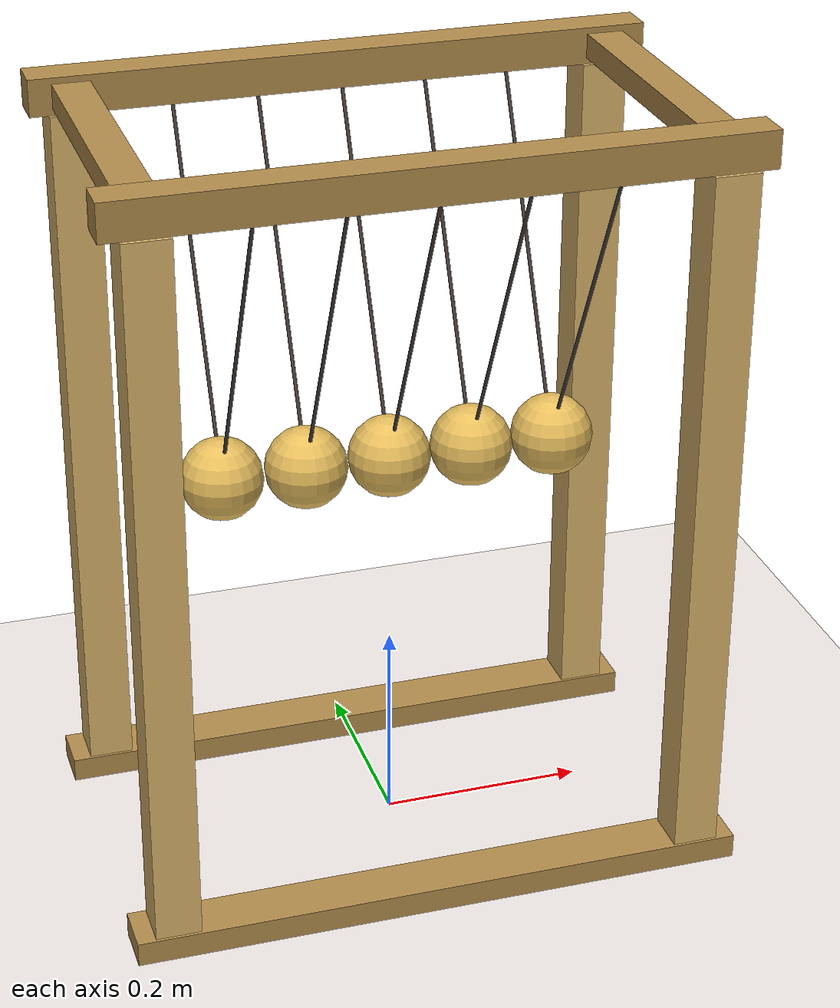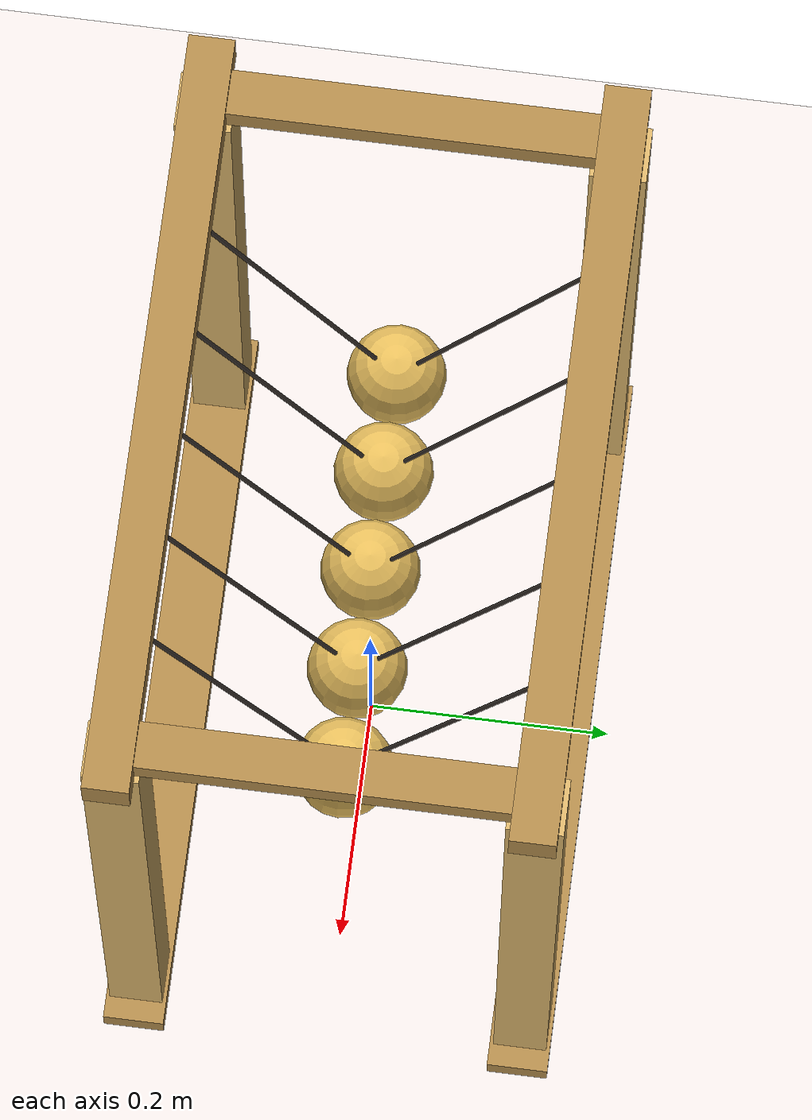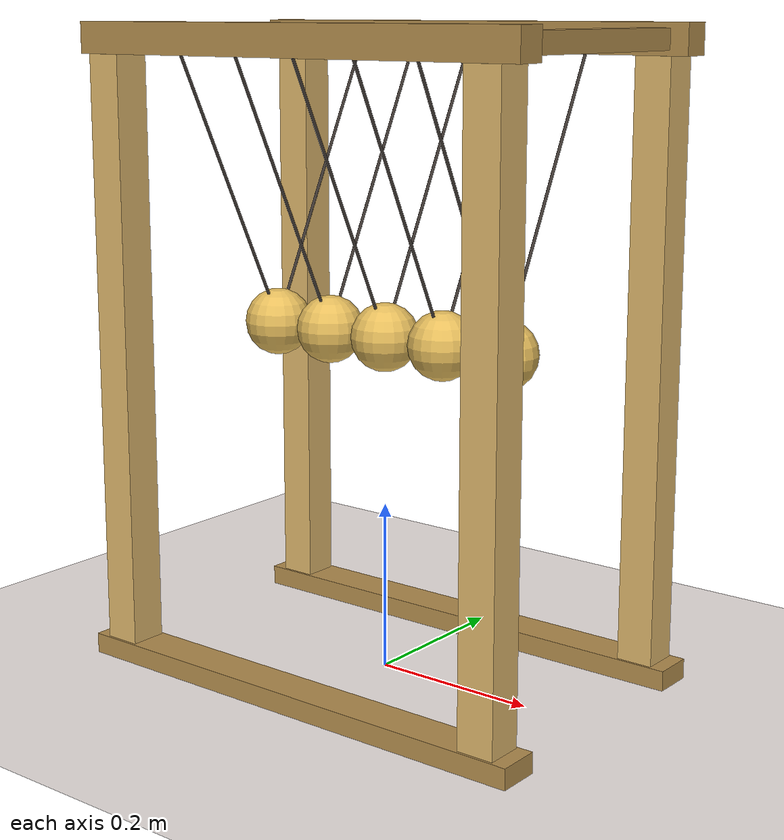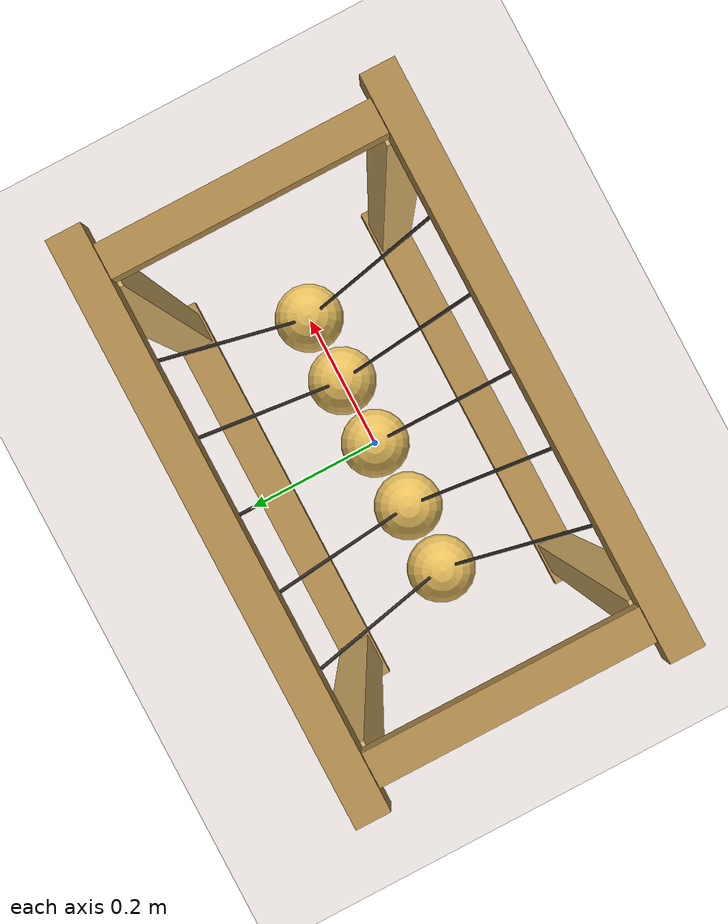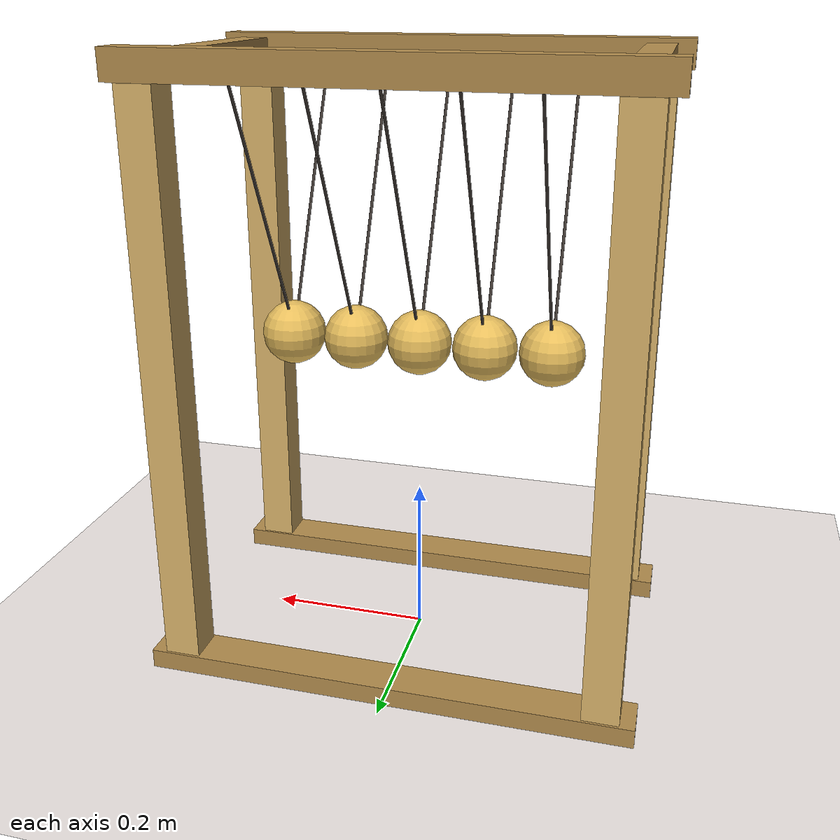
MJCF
<mujoco model="newton_cradle">
  <compiler angle="radian" coordinate="local" autolimits="true"/>
  <!-- Small timestep + stiff elastic contacts → momentum transfer chain. -->
  <option timestep="0.0005" gravity="0 0 -9.81" integrator="implicitfast"
          impratio="5" cone="elliptic"/>

  <visual>
    <headlight diffuse="0 0 0" ambient="0.50 0.48 0.55" specular="0 0 0"/>
    <rgba haze="0.94 0.91 0.90 1"/>
    <global azimuth="120" elevation="-15" offwidth="1920" offheight="1080" fovy="35"/>
    <quality shadowsize="8192" offsamples="8"/>
    <map shadowclip="6" shadowscale="0.7"/>
  </visual>

  <asset>
    <texture type="skybox" builtin="flat"
             rgb1="0.74 0.68 0.86" rgb2="0.74 0.68 0.86"
             width="512" height="512" mark="none" markrgb="0 0 0"/>

    <material name="floor_mat" rgba="0.94 0.91 0.90 1"
              specular="0.0" shininess="0.0"/>
    <material name="frame_wood" rgba="0.86 0.71 0.42 1"
              specular="0.15" shininess="0.2"/>
    <material name="frame_wood_dark" rgba="0.70 0.55 0.30 1"
              specular="0.15" shininess="0.2"/>
    <material name="ball_brass" rgba="0.90 0.74 0.36 1"
              specular="0.7" shininess="0.85"/>
    <material name="string_mat" rgba="0.25 0.22 0.20 1"
              specular="0.0" shininess="0.0"/>
  </asset>

  <default>
    <!-- Stiff, near-elastic contacts so momentum transfers cleanly. -->
    <geom solref="0.001 1" solimp="0.99 0.999 0.0001"/>
  </default>

  <worldbody>
    <light pos="0 0 12" dir="-0.30 0.55 -1" directional="true" castshadow="true"
           diffuse="0.85 0.82 0.78" specular="0.15 0.15 0.15"/>
    <light pos="0 0 8" dir="0.40 -0.30 -1" directional="true" castshadow="false"
           diffuse="0.28 0.28 0.34" specular="0 0 0"/>

    <geom name="floor" type="plane" size="40 40 0.1" material="floor_mat"/>

    <!-- ===== Wooden cradle frame =====
         5 balls at x = -0.164, -0.082, 0, 0.082, 0.164 (spacing 0.082 = 2r + 2mm).
         Hinge anchors at z = 0.72.  String length 0.32 → ball center z = 0.40. -->

    <!-- 4 vertical posts at the corners of the base. -->
    <geom type="box" size="0.022 0.022 0.36"
          pos="-0.26 -0.16 0.36" material="frame_wood"/>
    <geom type="box" size="0.022 0.022 0.36"
          pos=" 0.26 -0.16 0.36" material="frame_wood"/>
    <geom type="box" size="0.022 0.022 0.36"
          pos="-0.26  0.16 0.36" material="frame_wood"/>
    <geom type="box" size="0.022 0.022 0.36"
          pos=" 0.26  0.16 0.36" material="frame_wood"/>

    <!-- Base feet (slightly wider) to ground the look. -->
    <geom type="box" size="0.30 0.025 0.012"
          pos="0 -0.16 0.012" material="frame_wood_dark"/>
    <geom type="box" size="0.30 0.025 0.012"
          pos="0  0.16 0.012" material="frame_wood_dark"/>

    <!-- Two horizontal top bars (the hinge bars).  Sit just above the hinge
         points (z=0.72) so the geometry hides the joint anchor. -->
    <geom type="box" size="0.30 0.018 0.018"
          pos="0 -0.16 0.738" material="frame_wood_dark"/>
    <geom type="box" size="0.30 0.018 0.018"
          pos="0  0.16 0.738" material="frame_wood_dark"/>

    <!-- Two cross-bracing top spans (visual only) connecting the top bars in y. -->
    <geom type="box" size="0.018 0.16 0.012"
          pos="-0.26 0 0.738" material="frame_wood_dark"/>
    <geom type="box" size="0.018 0.16 0.012"
          pos=" 0.26 0 0.738" material="frame_wood_dark"/>

    <!-- ===== 5 balls hanging from hinges =====
         Each body is anchored at (x_i, 0, 0.72) with a hinge along +y.
         The string + ball geom hang from the body origin in -z. -->

    <body name="ball1" pos="-0.164 0 0.72">
      <joint name="h1" type="hinge" axis="0 1 0" damping="0.00005"/>
      <geom type="capsule" fromto="0 -0.155 0   0 0 -0.32" size="0.0018"
            material="string_mat" contype="0" conaffinity="0"/>
      <geom type="capsule" fromto="0  0.155 0   0 0 -0.32" size="0.0018"
            material="string_mat" contype="0" conaffinity="0"/>
      <geom name="b1" type="sphere" pos="0 0 -0.32" size="0.04" mass="0.20"
            material="ball_brass"/>
    </body>

    <body name="ball2" pos="-0.082 0 0.72">
      <joint name="h2" type="hinge" axis="0 1 0" damping="0.00005"/>
      <geom type="capsule" fromto="0 -0.155 0   0 0 -0.32" size="0.0018"
            material="string_mat" contype="0" conaffinity="0"/>
      <geom type="capsule" fromto="0  0.155 0   0 0 -0.32" size="0.0018"
            material="string_mat" contype="0" conaffinity="0"/>
      <geom name="b2" type="sphere" pos="0 0 -0.32" size="0.04" mass="0.20"
            material="ball_brass"/>
    </body>

    <body name="ball3" pos="0 0 0.72">
      <joint name="h3" type="hinge" axis="0 1 0" damping="0.00005"/>
      <geom type="capsule" fromto="0 -0.155 0   0 0 -0.32" size="0.0018"
            material="string_mat" contype="0" conaffinity="0"/>
      <geom type="capsule" fromto="0  0.155 0   0 0 -0.32" size="0.0018"
            material="string_mat" contype="0" conaffinity="0"/>
      <geom name="b3" type="sphere" pos="0 0 -0.32" size="0.04" mass="0.20"
            material="ball_brass"/>
    </body>

    <body name="ball4" pos="0.082 0 0.72">
      <joint name="h4" type="hinge" axis="0 1 0" damping="0.00005"/>
      <geom type="capsule" fromto="0 -0.155 0   0 0 -0.32" size="0.0018"
            material="string_mat" contype="0" conaffinity="0"/>
      <geom type="capsule" fromto="0  0.155 0   0 0 -0.32" size="0.0018"
            material="string_mat" contype="0" conaffinity="0"/>
      <geom name="b4" type="sphere" pos="0 0 -0.32" size="0.04" mass="0.20"
            material="ball_brass"/>
    </body>

    <body name="ball5" pos="0.164 0 0.72">
      <joint name="h5" type="hinge" axis="0 1 0" damping="0.00005"/>
      <geom type="capsule" fromto="0 -0.155 0   0 0 -0.32" size="0.0018"
            material="string_mat" contype="0" conaffinity="0"/>
      <geom type="capsule" fromto="0  0.155 0   0 0 -0.32" size="0.0018"
            material="string_mat" contype="0" conaffinity="0"/>
      <geom name="b5" type="sphere" pos="0 0 -0.32" size="0.04" mass="0.20"
            material="ball_brass"/>
    </body>

    <!-- Camera: nearly side-on, slight 3/4 from +x side, framing all 5 balls
         and the frame top.  Looking at (~0, 0, 0.4). -->
    <camera name="cam" pos="0.15 -1.30 0.45" fovy="35"
            xyaxes="0.994 0.115 0   -0.004 0.038 0.999"/>
  </worldbody>
</mujoco>
